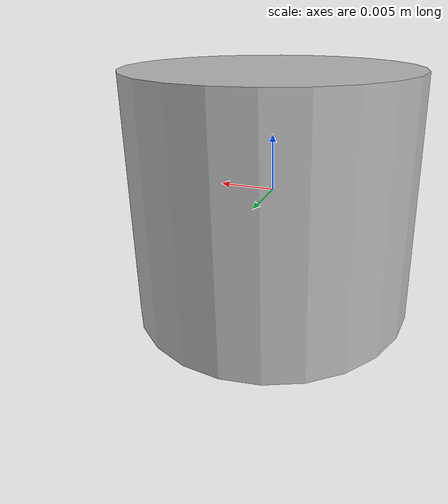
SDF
<?xml version="1.0"?>
<sdf version="1.6">
  <model name="ati_nano25">
    <pose>0 0 0 0 0 0</pose>
    <static>false</static>
    <link name="mount">
      <gravity>false</gravity>
      <inertial>
        <mass>1000.0</mass>
        <inertia>
          <ixx>1.0</ixx>
          <iyy>1.0</iyy>
          <izz>1.0</izz>
          <ixy>0.0</ixy>
          <ixz>0.0</ixz>
          <iyz>0.0</iyz>
        </inertia>
      </inertial>
    </link>
    <link name="body">
      <inertial>
        <mass>0.0634</mass>
        <inertia>
          <ixx>4.941553666667e-06</ixx>
          <iyy>4.941553666667e-06</iyy>
          <izz>4.953125000000e-06</izz>
          <ixy>0.0</ixy>
          <ixz>0.0</ixz>
          <iyz>0.0</iyz>
        </inertia>
      </inertial>
      <collision name="collision">
        <geometry>
          <cylinder>
            <radius>0.0125</radius>
            <length>0.0216</length>
          </cylinder>
        </geometry>
      </collision>
      <visual name="visual">
        <geometry>
          <cylinder>
            <radius>0.0125</radius>
            <length>0.0216</length>
          </cylinder>
        </geometry>
      </visual>
    </link>
    <joint name="ft_joint" type="fixed">
      <parent>mount</parent>
      <child>body</child>
      <sensor name="ft_sensor" type="force_torque">
        <always_on>true</always_on>
        <update_rate>1000</update_rate>
        <visualize>false</visualize>
        <force_torque>
          <frame>child</frame>
          <measure_direction>child_to_parent</measure_direction>
        </force_torque>
      </sensor>
    </joint>
  </model>
</sdf>
